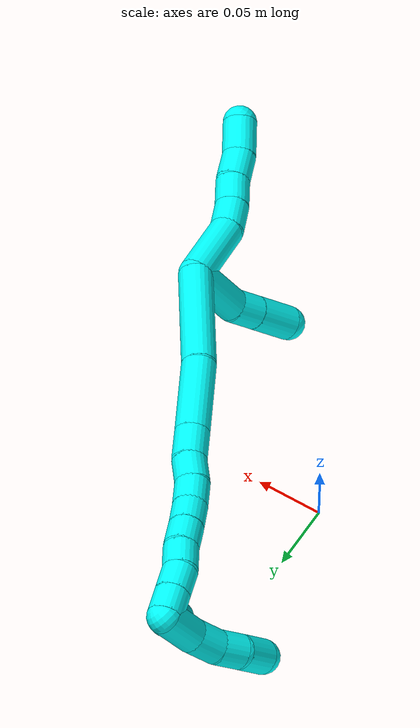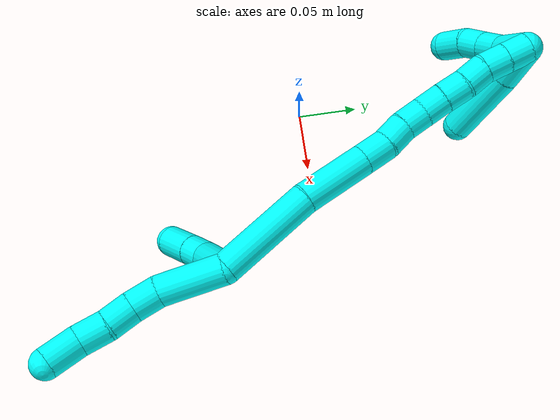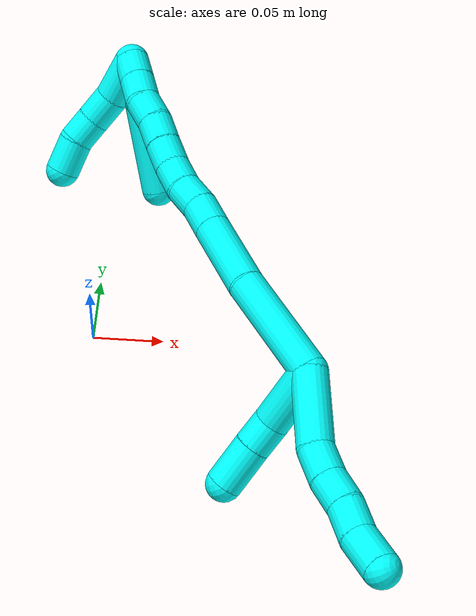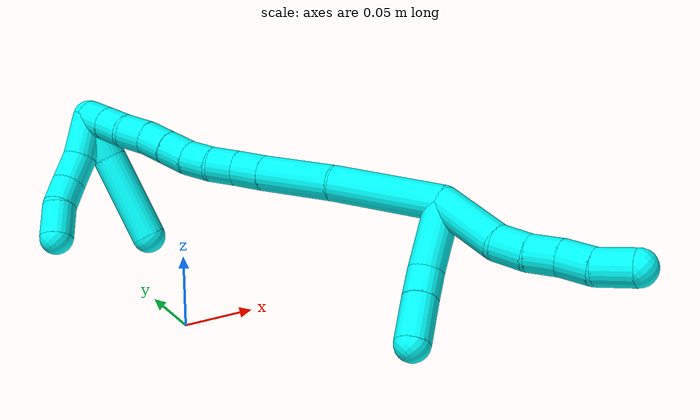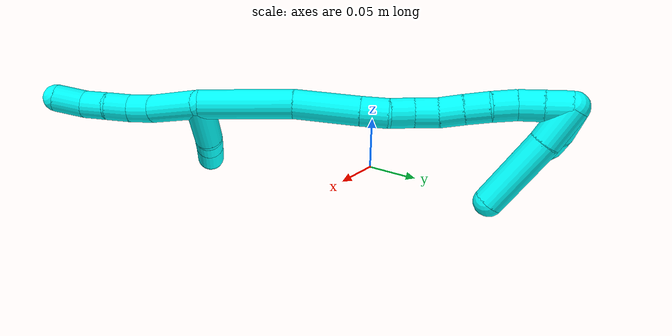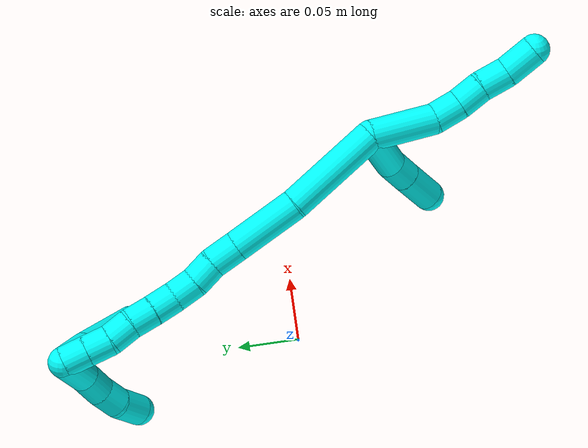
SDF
<sdf version="1.7">
 <world name="default">
  <model name="3">
   <static>0</static>
   <link name="3">
    <collision name="collision-cylinder-e_1_2_8">
     <pose>0.015317 -0.021891 0.000462 1.5497 0.610419 0.59843</pose>
     <geometry><cylinder><radius>0.0125</radius><length>0.053443</length></cylinder></geometry>
     <surface>
      <friction><ode><mu>1.16</mu><mu2>1.16</mu2><slip1>0</slip1><slip2>0</slip2></ode></friction>
      <contact><ode><kp>1e+06</kp><kd>1</kd><max_vel>0</max_vel><min_depth>0.001</min_depth></ode></contact>
     </surface>
    </collision>
    <visual name="visual-cylinder-e_1_2_8">
     <pose>0.015317 -0.021891 0.000462 1.5497 0.610419 0.59843</pose>
     <geometry><cylinder><radius>0.0125</radius><length>0.053443</length></cylinder></geometry>
     <material><ambient>0.003922 1 0.996078 1</ambient></material>
    </visual>
    <collision name="collision-cylinder-e_2_8_9">
     <pose>0.037388 -0.052348 0.004529 1.17238 0.628397 0.425067</pose>
     <geometry><cylinder><radius>0.0125</radius><length>0.022978</length></cylinder></geometry>
     <surface>
      <friction><ode><mu>1.16</mu><mu2>1.16</mu2><slip1>0</slip1><slip2>0</slip2></ode></friction>
      <contact><ode><kp>1e+06</kp><kd>1</kd><max_vel>0</max_vel><min_depth>0.001</min_depth></ode></contact>
     </surface>
    </collision>
    <visual name="visual-cylinder-e_2_8_9">
     <pose>0.037388 -0.052348 0.004529 1.17238 0.628397 0.425067</pose>
     <geometry><cylinder><radius>0.0125</radius><length>0.022978</length></cylinder></geometry>
     <material><ambient>0.003922 1 0.996078 1</ambient></material>
    </visual>
    <collision name="collision-cylinder-e_3_9_10">
     <pose>0.050201 -0.06855 0.013433 0.964156 0.577802 0.308568</pose>
     <geometry><cylinder><radius>0.0125</radius><length>0.022189</length></cylinder></geometry>
     <surface>
      <friction><ode><mu>1.16</mu><mu2>1.16</mu2><slip1>0</slip1><slip2>0</slip2></ode></friction>
      <contact><ode><kp>1e+06</kp><kd>1</kd><max_vel>0</max_vel><min_depth>0.001</min_depth></ode></contact>
     </surface>
    </collision>
    <visual name="visual-cylinder-e_3_9_10">
     <pose>0.050201 -0.06855 0.013433 0.964156 0.577802 0.308568</pose>
     <geometry><cylinder><radius>0.0125</radius><length>0.022189</length></cylinder></geometry>
     <material><ambient>0.003922 1 0.996078 1</ambient></material>
    </visual>
    <collision name="collision-cylinder-e_4_10_11">
     <pose>0.06253 -0.08534 0.022605 1.17061 0.562646 0.378486</pose>
     <geometry><cylinder><radius>0.0125</radius><length>0.023506</length></cylinder></geometry>
     <surface>
      <friction><ode><mu>1.16</mu><mu2>1.16</mu2><slip1>0</slip1><slip2>0</slip2></ode></friction>
      <contact><ode><kp>1e+06</kp><kd>1</kd><max_vel>0</max_vel><min_depth>0.001</min_depth></ode></contact>
     </surface>
    </collision>
    <visual name="visual-cylinder-e_4_10_11">
     <pose>0.06253 -0.08534 0.022605 1.17061 0.562646 0.378486</pose>
     <geometry><cylinder><radius>0.0125</radius><length>0.023506</length></cylinder></geometry>
     <material><ambient>0.003922 1 0.996078 1</ambient></material>
    </visual>
    <collision name="collision-cylinder-e_5_11_6">
     <pose>0.07499 -0.104351 0.034155 0.908923 0.46011 0.227857</pose>
     <geometry><cylinder><radius>0.0125</radius><length>0.027885</length></cylinder></geometry>
     <surface>
      <friction><ode><mu>1.16</mu><mu2>1.16</mu2><slip1>0</slip1><slip2>0</slip2></ode></friction>
      <contact><ode><kp>1e+06</kp><kd>1</kd><max_vel>0</max_vel><min_depth>0.001</min_depth></ode></contact>
     </surface>
    </collision>
    <visual name="visual-cylinder-e_5_11_6">
     <pose>0.07499 -0.104351 0.034155 0.908923 0.46011 0.227857</pose>
     <geometry><cylinder><radius>0.0125</radius><length>0.027885</length></cylinder></geometry>
     <material><ambient>0.003922 1 0.996078 1</ambient></material>
    </visual>
    <collision name="collision-cylinder-e_1_2_12">
     <pose>0.010971 -0.004511 -0.020133 2.92117 0.488721 2.3062</pose>
     <geometry><cylinder><radius>0.0125</radius><length>0.046736</length></cylinder></geometry>
     <surface>
      <friction><ode><mu>1.16</mu><mu2>1.16</mu2><slip1>0</slip1><slip2>0</slip2></ode></friction>
      <contact><ode><kp>1e+06</kp><kd>1</kd><max_vel>0</max_vel><min_depth>0.001</min_depth></ode></contact>
     </surface>
    </collision>
    <visual name="visual-cylinder-e_1_2_12">
     <pose>0.010971 -0.004511 -0.020133 2.92117 0.488721 2.3062</pose>
     <geometry><cylinder><radius>0.0125</radius><length>0.046736</length></cylinder></geometry>
     <material><ambient>0.003922 1 0.996078 1</ambient></material>
    </visual>
    <collision name="collision-cylinder-e_2_12_13">
     <pose>0.025701 -0.014129 -0.048662 2.59512 0.365267 1.16541</pose>
     <geometry><cylinder><radius>0.0125</radius><length>0.021042</length></cylinder></geometry>
     <surface>
      <friction><ode><mu>1.16</mu><mu2>1.16</mu2><slip1>0</slip1><slip2>0</slip2></ode></friction>
      <contact><ode><kp>1e+06</kp><kd>1</kd><max_vel>0</max_vel><min_depth>0.001</min_depth></ode></contact>
     </surface>
    </collision>
    <visual name="visual-cylinder-e_2_12_13">
     <pose>0.025701 -0.014129 -0.048662 2.59512 0.365267 1.16541</pose>
     <geometry><cylinder><radius>0.0125</radius><length>0.021042</length></cylinder></geometry>
     <material><ambient>0.003922 1 0.996078 1</ambient></material>
    </visual>
    <collision name="collision-cylinder-e_3_13_5">
     <pose>0.035627 -0.026954 -0.069784 2.59644 0.392899 1.23741</pose>
     <geometry><cylinder><radius>0.0125</radius><length>0.032222</length></cylinder></geometry>
     <surface>
      <friction><ode><mu>1.16</mu><mu2>1.16</mu2><slip1>0</slip1><slip2>0</slip2></ode></friction>
      <contact><ode><kp>1e+06</kp><kd>1</kd><max_vel>0</max_vel><min_depth>0.001</min_depth></ode></contact>
     </surface>
    </collision>
    <visual name="visual-cylinder-e_3_13_5">
     <pose>0.035627 -0.026954 -0.069784 2.59644 0.392899 1.23741</pose>
     <geometry><cylinder><radius>0.0125</radius><length>0.032222</length></cylinder></geometry>
     <material><ambient>0.003922 1 0.996078 1</ambient></material>
    </visual>
    <collision name="collision-cylinder-e_1_2_14">
     <pose>-0.02494 0.025025 -0.018954 -2.21902 -0.671351 1.22399</pose>
     <geometry><cylinder><radius>0.0125</radius><length>0.080186</length></cylinder></geometry>
     <surface>
      <friction><ode><mu>1.16</mu><mu2>1.16</mu2><slip1>0</slip1><slip2>0</slip2></ode></friction>
      <contact><ode><kp>1e+06</kp><kd>1</kd><max_vel>0</max_vel><min_depth>0.001</min_depth></ode></contact>
     </surface>
    </collision>
    <visual name="visual-cylinder-e_1_2_14">
     <pose>-0.02494 0.025025 -0.018954 -2.21902 -0.671351 1.22399</pose>
     <geometry><cylinder><radius>0.0125</radius><length>0.080186</length></cylinder></geometry>
     <material><ambient>0.003922 1 0.996078 1</ambient></material>
    </visual>
    <collision name="collision-cylinder-e_2_14_15">
     <pose>-0.064629 0.070338 -0.050481 -2.12559 -0.553496 0.943516</pose>
     <geometry><cylinder><radius>0.0125</radius><length>0.056117</length></cylinder></geometry>
     <surface>
      <friction><ode><mu>1.16</mu><mu2>1.16</mu2><slip1>0</slip1><slip2>0</slip2></ode></friction>
      <contact><ode><kp>1e+06</kp><kd>1</kd><max_vel>0</max_vel><min_depth>0.001</min_depth></ode></contact>
     </surface>
    </collision>
    <visual name="visual-cylinder-e_2_14_15">
     <pose>-0.064629 0.070338 -0.050481 -2.12559 -0.553496 0.943516</pose>
     <geometry><cylinder><radius>0.0125</radius><length>0.056117</length></cylinder></geometry>
     <material><ambient>0.003922 1 0.996078 1</ambient></material>
    </visual>
    <collision name="collision-cylinder-e_3_15_16">
     <pose>-0.085737 0.098999 -0.068012 -2.10545 -0.578849 0.962853</pose>
     <geometry><cylinder><radius>0.0125</radius><length>0.023248</length></cylinder></geometry>
     <surface>
      <friction><ode><mu>1.16</mu><mu2>1.16</mu2><slip1>0</slip1><slip2>0</slip2></ode></friction>
      <contact><ode><kp>1e+06</kp><kd>1</kd><max_vel>0</max_vel><min_depth>0.001</min_depth></ode></contact>
     </surface>
    </collision>
    <visual name="visual-cylinder-e_3_15_16">
     <pose>-0.085737 0.098999 -0.068012 -2.10545 -0.578849 0.962853</pose>
     <geometry><cylinder><radius>0.0125</radius><length>0.023248</length></cylinder></geometry>
     <material><ambient>0.003922 1 0.996078 1</ambient></material>
    </visual>
    <collision name="collision-cylinder-e_4_16_17">
     <pose>-0.09863 0.113056 -0.078238 -2.31822 -0.700478 1.39335</pose>
     <geometry><cylinder><radius>0.0125</radius><length>0.020272</length></cylinder></geometry>
     <surface>
      <friction><ode><mu>1.16</mu><mu2>1.16</mu2><slip1>0</slip1><slip2>0</slip2></ode></friction>
      <contact><ode><kp>1e+06</kp><kd>1</kd><max_vel>0</max_vel><min_depth>0.001</min_depth></ode></contact>
     </surface>
    </collision>
    <visual name="visual-cylinder-e_4_16_17">
     <pose>-0.09863 0.113056 -0.078238 -2.31822 -0.700478 1.39335</pose>
     <geometry><cylinder><radius>0.0125</radius><length>0.020272</length></cylinder></geometry>
     <material><ambient>0.003922 1 0.996078 1</ambient></material>
    </visual>
    <collision name="collision-cylinder-e_5_17_18">
     <pose>-0.111262 0.125711 -0.087296 -2.06882 -0.655266 1.03868</pose>
     <geometry><cylinder><radius>0.0125</radius><length>0.020018</length></cylinder></geometry>
     <surface>
      <friction><ode><mu>1.16</mu><mu2>1.16</mu2><slip1>0</slip1><slip2>0</slip2></ode></friction>
      <contact><ode><kp>1e+06</kp><kd>1</kd><max_vel>0</max_vel><min_depth>0.001</min_depth></ode></contact>
     </surface>
    </collision>
    <visual name="visual-cylinder-e_5_17_18">
     <pose>-0.111262 0.125711 -0.087296 -2.06882 -0.655266 1.03868</pose>
     <geometry><cylinder><radius>0.0125</radius><length>0.020018</length></cylinder></geometry>
     <material><ambient>0.003922 1 0.996078 1</ambient></material>
    </visual>
    <collision name="collision-cylinder-e_6_18_19">
     <pose>-0.124312 0.139434 -0.093581 -1.92469 -0.768042 1.05127</pose>
     <geometry><cylinder><radius>0.0125</radius><length>0.020009</length></cylinder></geometry>
     <surface>
      <friction><ode><mu>1.16</mu><mu2>1.16</mu2><slip1>0</slip1><slip2>0</slip2></ode></friction>
      <contact><ode><kp>1e+06</kp><kd>1</kd><max_vel>0</max_vel><min_depth>0.001</min_depth></ode></contact>
     </surface>
    </collision>
    <visual name="visual-cylinder-e_6_18_19">
     <pose>-0.124312 0.139434 -0.093581 -1.92469 -0.768042 1.05127</pose>
     <geometry><cylinder><radius>0.0125</radius><length>0.020009</length></cylinder></geometry>
     <material><ambient>0.003922 1 0.996078 1</ambient></material>
    </visual>
    <collision name="collision-cylinder-e_7_19_20">
     <pose>-0.137985 0.153241 -0.098419 -1.89145 -0.735021 0.980241</pose>
     <geometry><cylinder><radius>0.0125</radius><length>0.02005</length></cylinder></geometry>
     <surface>
      <friction><ode><mu>1.16</mu><mu2>1.16</mu2><slip1>0</slip1><slip2>0</slip2></ode></friction>
      <contact><ode><kp>1e+06</kp><kd>1</kd><max_vel>0</max_vel><min_depth>0.001</min_depth></ode></contact>
     </surface>
    </collision>
    <visual name="visual-cylinder-e_7_19_20">
     <pose>-0.137985 0.153241 -0.098419 -1.89145 -0.735021 0.980241</pose>
     <geometry><cylinder><radius>0.0125</radius><length>0.02005</length></cylinder></geometry>
     <material><ambient>0.003922 1 0.996078 1</ambient></material>
    </visual>
    <collision name="collision-cylinder-e_8_20_21">
     <pose>-0.151382 0.166724 -0.104578 -2.10673 -0.728991 1.18112</pose>
     <geometry><cylinder><radius>0.0125</radius><length>0.020038</length></cylinder></geometry>
     <surface>
      <friction><ode><mu>1.16</mu><mu2>1.16</mu2><slip1>0</slip1><slip2>0</slip2></ode></friction>
      <contact><ode><kp>1e+06</kp><kd>1</kd><max_vel>0</max_vel><min_depth>0.001</min_depth></ode></contact>
     </surface>
    </collision>
    <visual name="visual-cylinder-e_8_20_21">
     <pose>-0.151382 0.166724 -0.104578 -2.10673 -0.728991 1.18112</pose>
     <geometry><cylinder><radius>0.0125</radius><length>0.020038</length></cylinder></geometry>
     <material><ambient>0.003922 1 0.996078 1</ambient></material>
    </visual>
    <collision name="collision-cylinder-e_9_21_22">
     <pose>-0.163587 0.181122 -0.110866 -1.87142 -0.58519 0.776098</pose>
     <geometry><cylinder><radius>0.0125</radius><length>0.020028</length></cylinder></geometry>
     <surface>
      <friction><ode><mu>1.16</mu><mu2>1.16</mu2><slip1>0</slip1><slip2>0</slip2></ode></friction>
      <contact><ode><kp>1e+06</kp><kd>1</kd><max_vel>0</max_vel><min_depth>0.001</min_depth></ode></contact>
     </surface>
    </collision>
    <visual name="visual-cylinder-e_9_21_22">
     <pose>-0.163587 0.181122 -0.110866 -1.87142 -0.58519 0.776098</pose>
     <geometry><cylinder><radius>0.0125</radius><length>0.020028</length></cylinder></geometry>
     <material><ambient>0.003922 1 0.996078 1</ambient></material>
    </visual>
    <collision name="collision-cylinder-e_10_22_1">
     <pose>-0.174626 0.197074 -0.115858 -1.87673 -0.582204 0.776201</pose>
     <geometry><cylinder><radius>0.0125</radius><length>0.020034</length></cylinder></geometry>
     <surface>
      <friction><ode><mu>1.16</mu><mu2>1.16</mu2><slip1>0</slip1><slip2>0</slip2></ode></friction>
      <contact><ode><kp>1e+06</kp><kd>1</kd><max_vel>0</max_vel><min_depth>0.001</min_depth></ode></contact>
     </surface>
    </collision>
    <visual name="visual-cylinder-e_10_22_1">
     <pose>-0.174626 0.197074 -0.115858 -1.87673 -0.582204 0.776201</pose>
     <geometry><cylinder><radius>0.0125</radius><length>0.020034</length></cylinder></geometry>
     <material><ambient>0.003922 1 0.996078 1</ambient></material>
    </visual>
    <collision name="collision-cylinder-e_1_1_23">
     <pose>-0.172004 0.201393 -0.131806 2.87561 0.52867 2.22351</pose>
     <geometry><cylinder><radius>0.0125</radius><length>0.032237</length></cylinder></geometry>
     <surface>
      <friction><ode><mu>1.16</mu><mu2>1.16</mu2><slip1>0</slip1><slip2>0</slip2></ode></friction>
      <contact><ode><kp>1e+06</kp><kd>1</kd><max_vel>0</max_vel><min_depth>0.001</min_depth></ode></contact>
     </surface>
    </collision>
    <visual name="visual-cylinder-e_1_1_23">
     <pose>-0.172004 0.201393 -0.131806 2.87561 0.52867 2.22351</pose>
     <geometry><cylinder><radius>0.0125</radius><length>0.032237</length></cylinder></geometry>
     <material><ambient>0.003922 1 0.996078 1</ambient></material>
    </visual>
    <collision name="collision-cylinder-e_2_23_24">
     <pose>-0.160147 0.193754 -0.155109 2.75835 0.336807 1.43919</pose>
     <geometry><cylinder><radius>0.0125</radius><length>0.022561</length></cylinder></geometry>
     <surface>
      <friction><ode><mu>1.16</mu><mu2>1.16</mu2><slip1>0</slip1><slip2>0</slip2></ode></friction>
      <contact><ode><kp>1e+06</kp><kd>1</kd><max_vel>0</max_vel><min_depth>0.001</min_depth></ode></contact>
     </surface>
    </collision>
    <visual name="visual-cylinder-e_2_23_24">
     <pose>-0.160147 0.193754 -0.155109 2.75835 0.336807 1.43919</pose>
     <geometry><cylinder><radius>0.0125</radius><length>0.022561</length></cylinder></geometry>
     <material><ambient>0.003922 1 0.996078 1</ambient></material>
    </visual>
    <collision name="collision-cylinder-e_3_24_25">
     <pose>-0.153416 0.184369 -0.173015 2.5494 0.300809 0.922132</pose>
     <geometry><cylinder><radius>0.0125</radius><length>0.020272</length></cylinder></geometry>
     <surface>
      <friction><ode><mu>1.16</mu><mu2>1.16</mu2><slip1>0</slip1><slip2>0</slip2></ode></friction>
      <contact><ode><kp>1e+06</kp><kd>1</kd><max_vel>0</max_vel><min_depth>0.001</min_depth></ode></contact>
     </surface>
    </collision>
    <visual name="visual-cylinder-e_3_24_25">
     <pose>-0.153416 0.184369 -0.173015 2.5494 0.300809 0.922132</pose>
     <geometry><cylinder><radius>0.0125</radius><length>0.020272</length></cylinder></geometry>
     <material><ambient>0.003922 1 0.996078 1</ambient></material>
    </visual>
    <collision name="collision-cylinder-e_4_25_4">
     <pose>-0.143505 0.173404 -0.189808 2.57592 0.587294 1.61046</pose>
     <geometry><cylinder><radius>0.0125</radius><length>0.024931</length></cylinder></geometry>
     <surface>
      <friction><ode><mu>1.16</mu><mu2>1.16</mu2><slip1>0</slip1><slip2>0</slip2></ode></friction>
      <contact><ode><kp>1e+06</kp><kd>1</kd><max_vel>0</max_vel><min_depth>0.001</min_depth></ode></contact>
     </surface>
    </collision>
    <visual name="visual-cylinder-e_4_25_4">
     <pose>-0.143505 0.173404 -0.189808 2.57592 0.587294 1.61046</pose>
     <geometry><cylinder><radius>0.0125</radius><length>0.024931</length></cylinder></geometry>
     <material><ambient>0.003922 1 0.996078 1</ambient></material>
    </visual>
    <collision name="collision-cylinder-e_1_1_26">
     <pose>-0.164067 0.203026 -0.123609 2.77207 1.23489 2.62685</pose>
     <geometry><cylinder><radius>0.0125</radius><length>0.034036</length></cylinder></geometry>
     <surface>
      <friction><ode><mu>1.16</mu><mu2>1.16</mu2><slip1>0</slip1><slip2>0</slip2></ode></friction>
      <contact><ode><kp>1e+06</kp><kd>1</kd><max_vel>0</max_vel><min_depth>0.001</min_depth></ode></contact>
     </surface>
    </collision>
    <visual name="visual-cylinder-e_1_1_26">
     <pose>-0.164067 0.203026 -0.123609 2.77207 1.23489 2.62685</pose>
     <geometry><cylinder><radius>0.0125</radius><length>0.034036</length></cylinder></geometry>
     <material><ambient>0.003922 1 0.996078 1</ambient></material>
    </visual>
    <collision name="collision-cylinder-e_2_26_3">
     <pose>-0.117305 0.194225 -0.138824 2.5454 1.19627 2.29438</pose>
     <geometry><cylinder><radius>0.0125</radius><length>0.065964</length></cylinder></geometry>
     <surface>
      <friction><ode><mu>1.16</mu><mu2>1.16</mu2><slip1>0</slip1><slip2>0</slip2></ode></friction>
      <contact><ode><kp>1e+06</kp><kd>1</kd><max_vel>0</max_vel><min_depth>0.001</min_depth></ode></contact>
     </surface>
    </collision>
    <visual name="visual-cylinder-e_2_26_3">
     <pose>-0.117305 0.194225 -0.138824 2.5454 1.19627 2.29438</pose>
     <geometry><cylinder><radius>0.0125</radius><length>0.065964</length></cylinder></geometry>
     <material><ambient>0.003922 1 0.996078 1</ambient></material>
    </visual>
    <collision name="collision-sphere-3">
     <pose>-0.086609 0.18745 -0.148808 0 -0 0</pose>
     <geometry><sphere><radius>0.0125</radius></sphere></geometry>
     <surface>
      <friction><ode><mu>1.16</mu><mu2>1.16</mu2><slip1>0</slip1><slip2>0</slip2></ode></friction>
      <contact><ode><kp>1e+06</kp><kd>1</kd><max_vel>0</max_vel><min_depth>0.001</min_depth></ode></contact>
     </surface>
    </collision>
    <visual name="visual-sphere-3">
     <pose>-0.086609 0.18745 -0.148808 0 -0 0</pose>
     <geometry><sphere><radius>0.0125</radius></sphere></geometry>
     <material><ambient>0.003922 1 0.996078 1</ambient></material>
    </visual>
    <collision name="collision-sphere-26">
     <pose>-0.148001 0.201 -0.12884 0 -0 0</pose>
     <geometry><sphere><radius>0.0125</radius></sphere></geometry>
     <surface>
      <friction><ode><mu>1.16</mu><mu2>1.16</mu2><slip1>0</slip1><slip2>0</slip2></ode></friction>
      <contact><ode><kp>1e+06</kp><kd>1</kd><max_vel>0</max_vel><min_depth>0.001</min_depth></ode></contact>
     </surface>
    </collision>
    <visual name="visual-sphere-26">
     <pose>-0.148001 0.201 -0.12884 0 -0 0</pose>
     <geometry><sphere><radius>0.0125</radius></sphere></geometry>
     <material><ambient>0.003922 1 0.996078 1</ambient></material>
    </visual>
    <collision name="collision-sphere-4">
     <pose>-0.136598 0.167842 -0.198568 0 -0 0</pose>
     <geometry><sphere><radius>0.0125</radius></sphere></geometry>
     <surface>
      <friction><ode><mu>1.16</mu><mu2>1.16</mu2><slip1>0</slip1><slip2>0</slip2></ode></friction>
      <contact><ode><kp>1e+06</kp><kd>1</kd><max_vel>0</max_vel><min_depth>0.001</min_depth></ode></contact>
     </surface>
    </collision>
    <visual name="visual-sphere-4">
     <pose>-0.136598 0.167842 -0.198568 0 -0 0</pose>
     <geometry><sphere><radius>0.0125</radius></sphere></geometry>
     <material><ambient>0.003922 1 0.996078 1</ambient></material>
    </visual>
    <collision name="collision-sphere-25">
     <pose>-0.150412 0.178966 -0.181048 0 -0 0</pose>
     <geometry><sphere><radius>0.0125</radius></sphere></geometry>
     <surface>
      <friction><ode><mu>1.16</mu><mu2>1.16</mu2><slip1>0</slip1><slip2>0</slip2></ode></friction>
      <contact><ode><kp>1e+06</kp><kd>1</kd><max_vel>0</max_vel><min_depth>0.001</min_depth></ode></contact>
     </surface>
    </collision>
    <visual name="visual-sphere-25">
     <pose>-0.150412 0.178966 -0.181048 0 -0 0</pose>
     <geometry><sphere><radius>0.0125</radius></sphere></geometry>
     <material><ambient>0.003922 1 0.996078 1</ambient></material>
    </visual>
    <collision name="collision-sphere-24">
     <pose>-0.156419 0.189773 -0.164983 0 -0 0</pose>
     <geometry><sphere><radius>0.0125</radius></sphere></geometry>
     <surface>
      <friction><ode><mu>1.16</mu><mu2>1.16</mu2><slip1>0</slip1><slip2>0</slip2></ode></friction>
      <contact><ode><kp>1e+06</kp><kd>1</kd><max_vel>0</max_vel><min_depth>0.001</min_depth></ode></contact>
     </surface>
    </collision>
    <visual name="visual-sphere-24">
     <pose>-0.156419 0.189773 -0.164983 0 -0 0</pose>
     <geometry><sphere><radius>0.0125</radius></sphere></geometry>
     <material><ambient>0.003922 1 0.996078 1</ambient></material>
    </visual>
    <collision name="collision-sphere-23">
     <pose>-0.163874 0.197735 -0.145235 0 -0 0</pose>
     <geometry><sphere><radius>0.0125</radius></sphere></geometry>
     <surface>
      <friction><ode><mu>1.16</mu><mu2>1.16</mu2><slip1>0</slip1><slip2>0</slip2></ode></friction>
      <contact><ode><kp>1e+06</kp><kd>1</kd><max_vel>0</max_vel><min_depth>0.001</min_depth></ode></contact>
     </surface>
    </collision>
    <visual name="visual-sphere-23">
     <pose>-0.163874 0.197735 -0.145235 0 -0 0</pose>
     <geometry><sphere><radius>0.0125</radius></sphere></geometry>
     <material><ambient>0.003922 1 0.996078 1</ambient></material>
    </visual>
    <collision name="collision-sphere-1">
     <pose>-0.180134 0.205052 -0.118378 0 -0 0</pose>
     <geometry><sphere><radius>0.0125</radius></sphere></geometry>
     <surface>
      <friction><ode><mu>1.16</mu><mu2>1.16</mu2><slip1>0</slip1><slip2>0</slip2></ode></friction>
      <contact><ode><kp>1e+06</kp><kd>1</kd><max_vel>0</max_vel><min_depth>0.001</min_depth></ode></contact>
     </surface>
    </collision>
    <visual name="visual-sphere-1">
     <pose>-0.180134 0.205052 -0.118378 0 -0 0</pose>
     <geometry><sphere><radius>0.0125</radius></sphere></geometry>
     <material><ambient>0.003922 1 0.996078 1</ambient></material>
    </visual>
    <collision name="collision-sphere-22">
     <pose>-0.169118 0.189095 -0.113338 0 -0 0</pose>
     <geometry><sphere><radius>0.0125</radius></sphere></geometry>
     <surface>
      <friction><ode><mu>1.16</mu><mu2>1.16</mu2><slip1>0</slip1><slip2>0</slip2></ode></friction>
      <contact><ode><kp>1e+06</kp><kd>1</kd><max_vel>0</max_vel><min_depth>0.001</min_depth></ode></contact>
     </surface>
    </collision>
    <visual name="visual-sphere-22">
     <pose>-0.169118 0.189095 -0.113338 0 -0 0</pose>
     <geometry><sphere><radius>0.0125</radius></sphere></geometry>
     <material><ambient>0.003922 1 0.996078 1</ambient></material>
    </visual>
    <collision name="collision-sphere-21">
     <pose>-0.158056 0.173149 -0.108394 0 -0 0</pose>
     <geometry><sphere><radius>0.0125</radius></sphere></geometry>
     <surface>
      <friction><ode><mu>1.16</mu><mu2>1.16</mu2><slip1>0</slip1><slip2>0</slip2></ode></friction>
      <contact><ode><kp>1e+06</kp><kd>1</kd><max_vel>0</max_vel><min_depth>0.001</min_depth></ode></contact>
     </surface>
    </collision>
    <visual name="visual-sphere-21">
     <pose>-0.158056 0.173149 -0.108394 0 -0 0</pose>
     <geometry><sphere><radius>0.0125</radius></sphere></geometry>
     <material><ambient>0.003922 1 0.996078 1</ambient></material>
    </visual>
    <collision name="collision-sphere-6">
     <pose>0.081181 -0.114205 0.041833 0 -0 0</pose>
     <geometry><sphere><radius>0.0125</radius></sphere></geometry>
     <surface>
      <friction><ode><mu>1.16</mu><mu2>1.16</mu2><slip1>0</slip1><slip2>0</slip2></ode></friction>
      <contact><ode><kp>1e+06</kp><kd>1</kd><max_vel>0</max_vel><min_depth>0.001</min_depth></ode></contact>
     </surface>
    </collision>
    <visual name="visual-sphere-6">
     <pose>0.081181 -0.114205 0.041833 0 -0 0</pose>
     <geometry><sphere><radius>0.0125</radius></sphere></geometry>
     <material><ambient>0.003922 1 0.996078 1</ambient></material>
    </visual>
    <collision name="collision-sphere-11">
     <pose>0.068799 -0.094496 0.026478 0 -0 0</pose>
     <geometry><sphere><radius>0.0125</radius></sphere></geometry>
     <surface>
      <friction><ode><mu>1.16</mu><mu2>1.16</mu2><slip1>0</slip1><slip2>0</slip2></ode></friction>
      <contact><ode><kp>1e+06</kp><kd>1</kd><max_vel>0</max_vel><min_depth>0.001</min_depth></ode></contact>
     </surface>
    </collision>
    <visual name="visual-sphere-11">
     <pose>0.068799 -0.094496 0.026478 0 -0 0</pose>
     <geometry><sphere><radius>0.0125</radius></sphere></geometry>
     <material><ambient>0.003922 1 0.996078 1</ambient></material>
    </visual>
    <collision name="collision-sphere-10">
     <pose>0.056261 -0.076185 0.018732 0 -0 0</pose>
     <geometry><sphere><radius>0.0125</radius></sphere></geometry>
     <surface>
      <friction><ode><mu>1.16</mu><mu2>1.16</mu2><slip1>0</slip1><slip2>0</slip2></ode></friction>
      <contact><ode><kp>1e+06</kp><kd>1</kd><max_vel>0</max_vel><min_depth>0.001</min_depth></ode></contact>
     </surface>
    </collision>
    <visual name="visual-sphere-10">
     <pose>0.056261 -0.076185 0.018732 0 -0 0</pose>
     <geometry><sphere><radius>0.0125</radius></sphere></geometry>
     <material><ambient>0.003922 1 0.996078 1</ambient></material>
    </visual>
    <collision name="collision-sphere-9">
     <pose>0.044142 -0.060914 0.008135 0 -0 0</pose>
     <geometry><sphere><radius>0.0125</radius></sphere></geometry>
     <surface>
      <friction><ode><mu>1.16</mu><mu2>1.16</mu2><slip1>0</slip1><slip2>0</slip2></ode></friction>
      <contact><ode><kp>1e+06</kp><kd>1</kd><max_vel>0</max_vel><min_depth>0.001</min_depth></ode></contact>
     </surface>
    </collision>
    <visual name="visual-sphere-9">
     <pose>0.044142 -0.060914 0.008135 0 -0 0</pose>
     <geometry><sphere><radius>0.0125</radius></sphere></geometry>
     <material><ambient>0.003922 1 0.996078 1</ambient></material>
    </visual>
    <collision name="collision-sphere-2">
     <geometry><sphere><radius>0.0125</radius></sphere></geometry>
     <surface>
      <friction><ode><mu>1.16</mu><mu2>1.16</mu2><slip1>0</slip1><slip2>0</slip2></ode></friction>
      <contact><ode><kp>1e+06</kp><kd>1</kd><max_vel>0</max_vel><min_depth>0.001</min_depth></ode></contact>
     </surface>
    </collision>
    <visual name="visual-sphere-2">
     <geometry><sphere><radius>0.0125</radius></sphere></geometry>
     <material><ambient>0.003922 1 0.996078 1</ambient></material>
    </visual>
    <collision name="collision-sphere-19">
     <pose>-0.131262 0.146184 -0.096075 0 -0 0</pose>
     <geometry><sphere><radius>0.0125</radius></sphere></geometry>
     <surface>
      <friction><ode><mu>1.16</mu><mu2>1.16</mu2><slip1>0</slip1><slip2>0</slip2></ode></friction>
      <contact><ode><kp>1e+06</kp><kd>1</kd><max_vel>0</max_vel><min_depth>0.001</min_depth></ode></contact>
     </surface>
    </collision>
    <visual name="visual-sphere-19">
     <pose>-0.131262 0.146184 -0.096075 0 -0 0</pose>
     <geometry><sphere><radius>0.0125</radius></sphere></geometry>
     <material><ambient>0.003922 1 0.996078 1</ambient></material>
    </visual>
    <collision name="collision-sphere-8">
     <pose>0.030634 -0.043782 0.000924 0 -0 0</pose>
     <geometry><sphere><radius>0.0125</radius></sphere></geometry>
     <surface>
      <friction><ode><mu>1.16</mu><mu2>1.16</mu2><slip1>0</slip1><slip2>0</slip2></ode></friction>
      <contact><ode><kp>1e+06</kp><kd>1</kd><max_vel>0</max_vel><min_depth>0.001</min_depth></ode></contact>
     </surface>
    </collision>
    <visual name="visual-sphere-8">
     <pose>0.030634 -0.043782 0.000924 0 -0 0</pose>
     <geometry><sphere><radius>0.0125</radius></sphere></geometry>
     <material><ambient>0.003922 1 0.996078 1</ambient></material>
    </visual>
    <collision name="collision-sphere-12">
     <pose>0.021942 -0.009022 -0.040266 0 -0 0</pose>
     <geometry><sphere><radius>0.0125</radius></sphere></geometry>
     <surface>
      <friction><ode><mu>1.16</mu><mu2>1.16</mu2><slip1>0</slip1><slip2>0</slip2></ode></friction>
      <contact><ode><kp>1e+06</kp><kd>1</kd><max_vel>0</max_vel><min_depth>0.001</min_depth></ode></contact>
     </surface>
    </collision>
    <visual name="visual-sphere-12">
     <pose>0.021942 -0.009022 -0.040266 0 -0 0</pose>
     <geometry><sphere><radius>0.0125</radius></sphere></geometry>
     <material><ambient>0.003922 1 0.996078 1</ambient></material>
    </visual>
    <collision name="collision-sphere-13">
     <pose>0.029459 -0.019236 -0.057058 0 -0 0</pose>
     <geometry><sphere><radius>0.0125</radius></sphere></geometry>
     <surface>
      <friction><ode><mu>1.16</mu><mu2>1.16</mu2><slip1>0</slip1><slip2>0</slip2></ode></friction>
      <contact><ode><kp>1e+06</kp><kd>1</kd><max_vel>0</max_vel><min_depth>0.001</min_depth></ode></contact>
     </surface>
    </collision>
    <visual name="visual-sphere-13">
     <pose>0.029459 -0.019236 -0.057058 0 -0 0</pose>
     <geometry><sphere><radius>0.0125</radius></sphere></geometry>
     <material><ambient>0.003922 1 0.996078 1</ambient></material>
    </visual>
    <collision name="collision-sphere-5">
     <pose>0.041795 -0.034671 -0.08251 0 -0 0</pose>
     <geometry><sphere><radius>0.0125</radius></sphere></geometry>
     <surface>
      <friction><ode><mu>1.16</mu><mu2>1.16</mu2><slip1>0</slip1><slip2>0</slip2></ode></friction>
      <contact><ode><kp>1e+06</kp><kd>1</kd><max_vel>0</max_vel><min_depth>0.001</min_depth></ode></contact>
     </surface>
    </collision>
    <visual name="visual-sphere-5">
     <pose>0.041795 -0.034671 -0.08251 0 -0 0</pose>
     <geometry><sphere><radius>0.0125</radius></sphere></geometry>
     <material><ambient>0.003922 1 0.996078 1</ambient></material>
    </visual>
    <collision name="collision-sphere-14">
     <pose>-0.049879 0.050049 -0.037907 0 -0 0</pose>
     <geometry><sphere><radius>0.0125</radius></sphere></geometry>
     <surface>
      <friction><ode><mu>1.16</mu><mu2>1.16</mu2><slip1>0</slip1><slip2>0</slip2></ode></friction>
      <contact><ode><kp>1e+06</kp><kd>1</kd><max_vel>0</max_vel><min_depth>0.001</min_depth></ode></contact>
     </surface>
    </collision>
    <visual name="visual-sphere-14">
     <pose>-0.049879 0.050049 -0.037907 0 -0 0</pose>
     <geometry><sphere><radius>0.0125</radius></sphere></geometry>
     <material><ambient>0.003922 1 0.996078 1</ambient></material>
    </visual>
    <collision name="collision-sphere-15">
     <pose>-0.079378 0.090627 -0.063054 0 -0 0</pose>
     <geometry><sphere><radius>0.0125</radius></sphere></geometry>
     <surface>
      <friction><ode><mu>1.16</mu><mu2>1.16</mu2><slip1>0</slip1><slip2>0</slip2></ode></friction>
      <contact><ode><kp>1e+06</kp><kd>1</kd><max_vel>0</max_vel><min_depth>0.001</min_depth></ode></contact>
     </surface>
    </collision>
    <visual name="visual-sphere-15">
     <pose>-0.079378 0.090627 -0.063054 0 -0 0</pose>
     <geometry><sphere><radius>0.0125</radius></sphere></geometry>
     <material><ambient>0.003922 1 0.996078 1</ambient></material>
    </visual>
    <collision name="collision-sphere-16">
     <pose>-0.092096 0.107372 -0.07297 0 -0 0</pose>
     <geometry><sphere><radius>0.0125</radius></sphere></geometry>
     <surface>
      <friction><ode><mu>1.16</mu><mu2>1.16</mu2><slip1>0</slip1><slip2>0</slip2></ode></friction>
      <contact><ode><kp>1e+06</kp><kd>1</kd><max_vel>0</max_vel><min_depth>0.001</min_depth></ode></contact>
     </surface>
    </collision>
    <visual name="visual-sphere-16">
     <pose>-0.092096 0.107372 -0.07297 0 -0 0</pose>
     <geometry><sphere><radius>0.0125</radius></sphere></geometry>
     <material><ambient>0.003922 1 0.996078 1</ambient></material>
    </visual>
    <collision name="collision-sphere-17">
     <pose>-0.105163 0.118739 -0.083505 0 -0 0</pose>
     <geometry><sphere><radius>0.0125</radius></sphere></geometry>
     <surface>
      <friction><ode><mu>1.16</mu><mu2>1.16</mu2><slip1>0</slip1><slip2>0</slip2></ode></friction>
      <contact><ode><kp>1e+06</kp><kd>1</kd><max_vel>0</max_vel><min_depth>0.001</min_depth></ode></contact>
     </surface>
    </collision>
    <visual name="visual-sphere-17">
     <pose>-0.105163 0.118739 -0.083505 0 -0 0</pose>
     <geometry><sphere><radius>0.0125</radius></sphere></geometry>
     <material><ambient>0.003922 1 0.996078 1</ambient></material>
    </visual>
    <collision name="collision-sphere-18">
     <pose>-0.117362 0.132683 -0.091087 0 -0 0</pose>
     <geometry><sphere><radius>0.0125</radius></sphere></geometry>
     <surface>
      <friction><ode><mu>1.16</mu><mu2>1.16</mu2><slip1>0</slip1><slip2>0</slip2></ode></friction>
      <contact><ode><kp>1e+06</kp><kd>1</kd><max_vel>0</max_vel><min_depth>0.001</min_depth></ode></contact>
     </surface>
    </collision>
    <visual name="visual-sphere-18">
     <pose>-0.117362 0.132683 -0.091087 0 -0 0</pose>
     <geometry><sphere><radius>0.0125</radius></sphere></geometry>
     <material><ambient>0.003922 1 0.996078 1</ambient></material>
    </visual>
    <collision name="collision-sphere-20">
     <pose>-0.144708 0.160299 -0.100763 0 -0 0</pose>
     <geometry><sphere><radius>0.0125</radius></sphere></geometry>
     <surface>
      <friction><ode><mu>1.16</mu><mu2>1.16</mu2><slip1>0</slip1><slip2>0</slip2></ode></friction>
      <contact><ode><kp>1e+06</kp><kd>1</kd><max_vel>0</max_vel><min_depth>0.001</min_depth></ode></contact>
     </surface>
    </collision>
    <visual name="visual-sphere-20">
     <pose>-0.144708 0.160299 -0.100763 0 -0 0</pose>
     <geometry><sphere><radius>0.0125</radius></sphere></geometry>
     <material><ambient>0.003922 1 0.996078 1</ambient></material>
    </visual>
    <inertial>
     <pose>-0.063363 0.077737 -0.06854 0 -0 0</pose>
     <mass>0.75</mass>
     <inertia>
      <ixx>0.000126</ixx>
      <ixy>0</ixy>
      <ixz>0</ixz>
      <iyy>0.000156</iyy>
      <iyz>0</iyz>
      <izz>-4.6e-05</izz>
     </inertia>
    </inertial>
   </link>
   <pose>0.153389 -0.078871 0.084431 -0.406378 0.855112 -0.577768</pose>
  </model>
 </world>
</sdf>
